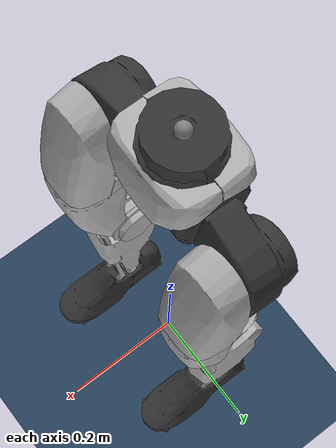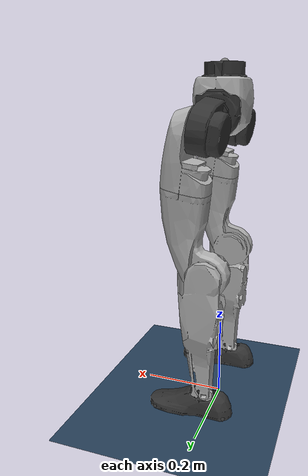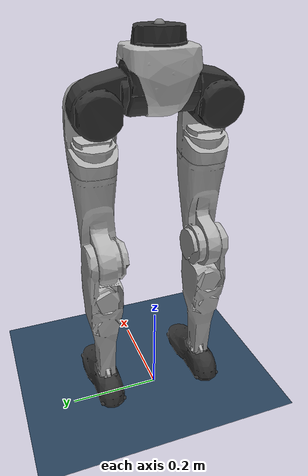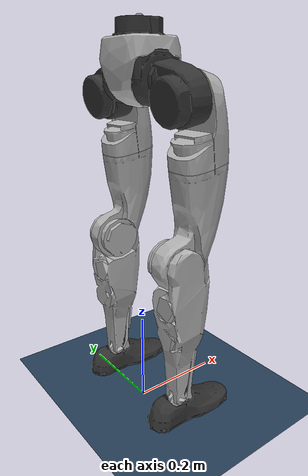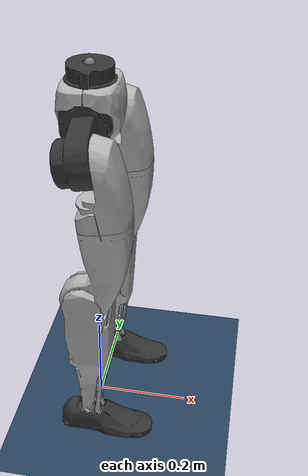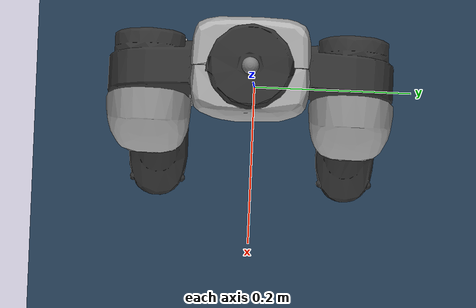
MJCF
<mujoco model="g1_29dof">
  <compiler angle="radian" meshdir="meshes"/>

  <visual>
    <headlight diffuse="0.6 0.6 0.6" ambient="0.3 0.3 0.3" specular="0 0 0"/>
    <rgba haze="0.15 0.25 0.35 1"/>
    <global azimuth="-130" elevation="-20"/>
  </visual>

  <default>
    <default class="torso_motor">
      <joint damping="0.05" armature="0.01" frictionloss="0.2"/>
    </default>
    <default class="leg_motor">
      <joint damping="0.05" armature="0.01" frictionloss="0.2"/>
    </default>
    <default class="ankle_motor">
      <joint damping="0.05" armature="0.01" frictionloss="0.2"/>
    </default>
    <default class="arm_motor">
      <joint damping="0.05" armature="0.01" frictionloss="0.2"/>
    </default>
    <default class="wrist_motor">
      <joint damping="0.05" armature="0.01" frictionloss="0.1"/>
    </default>
  </default>
  <asset>
    <texture type="skybox" builtin="gradient" rgb1="0.3 0.5 0.7" rgb2="0 0 0" width="512" height="3072"/>
    <texture type="2d" name="groundplane" builtin="checker" mark="edge" rgb1="0.2 0.3 0.4" rgb2="0.1 0.2 0.3"
      markrgb="0.8 0.8 0.8" width="300" height="300"/>
    <material name="groundplane" texture="groundplane" texuniform="true" texrepeat="5 5" reflectance="0.2"/>

    <mesh name="pelvis" file="pelvis.STL"/>
    <mesh name="pelvis_contour_link" file="pelvis_contour_link.STL"/>
    <mesh name="left_hip_pitch_link" file="left_hip_pitch_link.STL"/>
    <mesh name="left_hip_roll_link" file="left_hip_roll_link.STL"/>
    <mesh name="left_hip_yaw_link" file="left_hip_yaw_link.STL"/>
    <mesh name="left_knee_link" file="left_knee_link.STL"/>
    <mesh name="left_ankle_pitch_link" file="left_ankle_pitch_link.STL"/>
    <mesh name="left_ankle_roll_link" file="left_ankle_roll_link.STL"/>
    <mesh name="right_hip_pitch_link" file="right_hip_pitch_link.STL"/>
    <mesh name="right_hip_roll_link" file="right_hip_roll_link.STL"/>
    <mesh name="right_hip_yaw_link" file="right_hip_yaw_link.STL"/>
    <mesh name="right_knee_link" file="right_knee_link.STL"/>
    <mesh name="right_ankle_pitch_link" file="right_ankle_pitch_link.STL"/>
    <mesh name="right_ankle_roll_link" file="right_ankle_roll_link.STL"/>
    <mesh name="waist_yaw_link" file="waist_yaw_link.STL"/>
    <mesh name="waist_roll_link" file="waist_roll_link.STL"/>
    <mesh name="torso_link" file="torso_link.STL"/>
    <mesh name="logo_link" file="logo_link.STL"/>
    <mesh name="head_link" file="head_link.STL"/>
    <mesh name="waist_support_link" file="waist_support_link.STL"/>
  </asset>
  <worldbody>
    <!-- Added floor and light -->
    <light pos="0 0 1.5" dir="0 0 -1" directional="true"/>
    <geom name="floor" size="0 0 0.05" type="plane" material="groundplane"/>
    <body name="pelvis" pos="0 0 0.81">
      <site name="imu" size="0.01" pos="0.0 0.0 0.0"/>
      <inertial pos="0 0 -0.07605" quat="1 0 -0.000399148 0" mass="3.813" diaginertia="0.010549 0.0093089 0.0079184"/>
      <geom type="mesh" contype="0" conaffinity="0" group="1" density="0" rgba="0.2 0.2 0.2 1" mesh="pelvis"/>
      <geom type="mesh" contype="0" conaffinity="0" group="1" density="0" rgba="0.7 0.7 0.7 1" mesh="pelvis_contour_link"/>
      <geom type="mesh" rgba="0.7 0.7 0.7 1" mesh="pelvis_contour_link"/>
      <body name="left_hip_pitch_link" pos="0 0.064452 -0.1027">
        <inertial pos="0.002741 0.047791 -0.02606" quat="0.954862 0.293964 0.0302556 0.030122" mass="1.35" diaginertia="0.00181517 0.00153422 0.00116212"/>
        <joint name="left_hip_pitch_joint" pos="0 0 0" axis="0 1 0" range="-2.5307 2.8798" actuatorfrcrange="-88 88" class="leg_motor"/>
        <geom type="mesh" contype="0" conaffinity="0" group="1" density="0" rgba="0.2 0.2 0.2 1" mesh="left_hip_pitch_link"/>
        <geom type="mesh" rgba="0.2 0.2 0.2 1" mesh="left_hip_pitch_link"/>
        <body name="left_hip_roll_link" pos="0 0.052 -0.030465" quat="0.996179 0 -0.0873386 0">
          <inertial pos="0.029812 -0.001045 -0.087934" quat="0.977808 -1.97119e-05 0.205576 -0.0403793" mass="1.52" diaginertia="0.00254986 0.00241169 0.00148755"/>
          <joint name="left_hip_roll_joint" pos="0 0 0" axis="1 0 0" range="-0.5236 2.9671" actuatorfrcrange="-88 88" class="leg_motor"/>
          <geom type="mesh" contype="0" conaffinity="0" group="1" density="0" rgba="0.7 0.7 0.7 1" mesh="left_hip_roll_link"/>
          <geom type="mesh" rgba="0.7 0.7 0.7 1" mesh="left_hip_roll_link"/>
          <body name="left_hip_yaw_link" pos="0.025001 0 -0.12412">
            <inertial pos="-0.057709 -0.010981 -0.15078" quat="0.600598 0.15832 0.223482 0.751181" mass="1.702" diaginertia="0.00776166 0.00717575 0.00160139"/>
            <joint name="left_hip_yaw_joint" pos="0 0 0" axis="0 0 1" range="-2.7576 2.7576" actuatorfrcrange="-88 88" class="leg_motor"/>
            <geom type="mesh" contype="0" conaffinity="0" group="1" density="0" rgba="0.7 0.7 0.7 1" mesh="left_hip_yaw_link"/>
            <geom type="mesh" rgba="0.7 0.7 0.7 1" mesh="left_hip_yaw_link"/>
            <body name="left_knee_link" pos="-0.078273 0.0021489 -0.17734" quat="0.996179 0 0.0873386 0">
              <inertial pos="0.005457 0.003964 -0.12074" quat="0.923418 -0.0327699 0.0158246 0.382067" mass="1.932" diaginertia="0.0113804 0.0112778 0.00146458"/>
              <joint name="left_knee_joint" pos="0 0 0" axis="0 1 0" range="-0.087267 2.8798" actuatorfrcrange="-139 139" class="leg_motor"/>
              <geom type="mesh" contype="0" conaffinity="0" group="1" density="0" rgba="0.7 0.7 0.7 1" mesh="left_knee_link"/>
              <geom type="mesh" rgba="0.7 0.7 0.7 1" mesh="left_knee_link"/>
              <body name="left_ankle_pitch_link" pos="0 -9.4445e-05 -0.30001">
                <inertial pos="-0.007269 0 0.011137" quat="0.603053 0.369225 0.369225 0.603053" mass="0.074" diaginertia="1.89e-05 1.40805e-05 6.9195e-06"/>
                <joint name="left_ankle_pitch_joint" pos="0 0 0" axis="0 1 0" range="-0.87267 0.5236" actuatorfrcrange="-50 50" class="ankle_motor"/>
                <geom type="mesh" contype="0" conaffinity="0" group="1" density="0" rgba="0.7 0.7 0.7 1" mesh="left_ankle_pitch_link"/>
                <geom type="mesh" rgba="0.7 0.7 0.7 1" mesh="left_ankle_pitch_link"/>
                <body name="left_ankle_roll_link" pos="0 0 -0.017558">
                  <inertial pos="0.026505 0 -0.016425" quat="-0.000481092 0.728482 -0.000618967 0.685065" mass="0.608" diaginertia="0.00167218 0.0016161 0.000217621"/>
                  <joint name="left_ankle_roll_joint" pos="0 0 0" axis="1 0 0" range="-0.2618 0.2618" actuatorfrcrange="-50 50" class="ankle_motor"/>
                  <geom type="mesh" contype="0" conaffinity="0" group="1" density="0" rgba="0.2 0.2 0.2 1" mesh="left_ankle_roll_link"/>
                  <geom size="0.005" pos="-0.05 0.025 -0.03" rgba="0.2 0.2 0.2 1"/>
                  <geom size="0.005" pos="-0.05 -0.025 -0.03" rgba="0.2 0.2 0.2 1"/>
                  <geom size="0.005" pos="0.12 0.03 -0.03" rgba="0.2 0.2 0.2 1"/>
                  <geom size="0.005" pos="0.12 -0.03 -0.03" rgba="0.2 0.2 0.2 1"/>
                </body>
              </body>
            </body>
          </body>
        </body>
      </body>
      <body name="right_hip_pitch_link" pos="0 -0.064452 -0.1027">
        <inertial pos="0.002741 -0.047791 -0.02606" quat="0.954862 -0.293964 0.0302556 -0.030122" mass="1.35" diaginertia="0.00181517 0.00153422 0.00116212"/>
        <joint name="right_hip_pitch_joint" pos="0 0 0" axis="0 1 0" range="-2.5307 2.8798" actuatorfrcrange="-88 88" class="leg_motor"/>
        <geom type="mesh" contype="0" conaffinity="0" group="1" density="0" rgba="0.2 0.2 0.2 1" mesh="right_hip_pitch_link"/>
        <geom type="mesh" rgba="0.2 0.2 0.2 1" mesh="right_hip_pitch_link"/>
        <body name="right_hip_roll_link" pos="0 -0.052 -0.030465" quat="0.996179 0 -0.0873386 0">
          <inertial pos="0.029812 0.001045 -0.087934" quat="0.977808 1.97119e-05 0.205576 0.0403793" mass="1.52" diaginertia="0.00254986 0.00241169 0.00148755"/>
          <joint name="right_hip_roll_joint" pos="0 0 0" axis="1 0 0" range="-2.9671 0.5236" actuatorfrcrange="-88 88" class="leg_motor"/>
          <geom type="mesh" contype="0" conaffinity="0" group="1" density="0" rgba="0.7 0.7 0.7 1" mesh="right_hip_roll_link"/>
          <geom type="mesh" rgba="0.7 0.7 0.7 1" mesh="right_hip_roll_link"/>
          <body name="right_hip_yaw_link" pos="0.025001 0 -0.12412">
            <inertial pos="-0.057709 0.010981 -0.15078" quat="0.751181 0.223482 0.15832 0.600598" mass="1.702" diaginertia="0.00776166 0.00717575 0.00160139"/>
            <joint name="right_hip_yaw_joint" pos="0 0 0" axis="0 0 1" range="-2.7576 2.7576" actuatorfrcrange="-88 88" class="leg_motor"/>
            <geom type="mesh" contype="0" conaffinity="0" group="1" density="0" rgba="0.7 0.7 0.7 1" mesh="right_hip_yaw_link"/>
            <geom type="mesh" rgba="0.7 0.7 0.7 1" mesh="right_hip_yaw_link"/>
            <body name="right_knee_link" pos="-0.078273 -0.0021489 -0.17734" quat="0.996179 0 0.0873386 0">
              <inertial pos="0.005457 -0.003964 -0.12074" quat="0.923439 0.0345276 0.0116333 -0.382012" mass="1.932" diaginertia="0.011374 0.0112843 0.00146452"/>
              <joint name="right_knee_joint" pos="0 0 0" axis="0 1 0" range="-0.087267 2.8798" actuatorfrcrange="-139 139" class="leg_motor"/>
              <geom type="mesh" contype="0" conaffinity="0" group="1" density="0" rgba="0.7 0.7 0.7 1" mesh="right_knee_link"/>
              <geom type="mesh" rgba="0.7 0.7 0.7 1" mesh="right_knee_link"/>
              <body name="right_ankle_pitch_link" pos="0 9.4445e-05 -0.30001">
                <inertial pos="-0.007269 0 0.011137" quat="0.603053 0.369225 0.369225 0.603053" mass="0.074" diaginertia="1.89e-05 1.40805e-05 6.9195e-06"/>
                <joint name="right_ankle_pitch_joint" pos="0 0 0" axis="0 1 0" range="-0.87267 0.5236" actuatorfrcrange="-50 50" class="ankle_motor"/>
                <geom type="mesh" contype="0" conaffinity="0" group="1" density="0" rgba="0.7 0.7 0.7 1" mesh="right_ankle_pitch_link"/>
                <geom type="mesh" rgba="0.7 0.7 0.7 1" mesh="right_ankle_pitch_link"/>
                <body name="right_ankle_roll_link" pos="0 0 -0.017558">
                  <inertial pos="0.026505 0 -0.016425" quat="0.000481092 0.728482 0.000618967 0.685065" mass="0.608" diaginertia="0.00167218 0.0016161 0.000217621"/>
                  <joint name="right_ankle_roll_joint" pos="0 0 0" axis="1 0 0" range="-0.2618 0.2618" actuatorfrcrange="-50 50" class="ankle_motor"/>
                  <geom type="mesh" contype="0" conaffinity="0" group="1" density="0" rgba="0.2 0.2 0.2 1" mesh="right_ankle_roll_link"/>
                  <geom size="0.005" pos="-0.05 0.025 -0.03" rgba="0.2 0.2 0.2 1"/>
                  <geom size="0.005" pos="-0.05 -0.025 -0.03" rgba="0.2 0.2 0.2 1"/>
                  <geom size="0.005" pos="0.12 0.03 -0.03" rgba="0.2 0.2 0.2 1"/>
                  <geom size="0.005" pos="0.12 -0.03 -0.03" rgba="0.2 0.2 0.2 1"/>
                </body>
              </body>
            </body>
          </body>
        </body>
      </body>
    </body>
  </worldbody>
  <actuator>
    <motor name="left_hip_pitch" joint="left_hip_pitch_joint" ctrlrange="-88 88"/>
    <motor name="left_hip_roll" joint="left_hip_roll_joint" ctrlrange="-88 88"/>
    <motor name="left_hip_yaw" joint="left_hip_yaw_joint" ctrlrange="-88 88"/>
    <motor name="left_knee" joint="left_knee_joint" ctrlrange="-139 139"/>
    <motor name="left_ankle_pitch" joint="left_ankle_pitch_joint" ctrlrange="-50 50"/>
    <motor name="left_ankle_roll" joint="left_ankle_roll_joint" ctrlrange="-50 50"/>
    <motor name="right_hip_pitch" joint="right_hip_pitch_joint" ctrlrange="-88 88"/>
    <motor name="right_hip_roll" joint="right_hip_roll_joint" ctrlrange="-88 88"/>
    <motor name="right_hip_yaw" joint="right_hip_yaw_joint" ctrlrange="-88 88"/>
    <motor name="right_knee" joint="right_knee_joint" ctrlrange="-139 139"/>
    <motor name="right_ankle_pitch" joint="right_ankle_pitch_joint" ctrlrange="-50 50"/>
    <motor name="right_ankle_roll" joint="right_ankle_roll_joint" ctrlrange="-50 50"/>
  </actuator>
  <sensor>
    <jointpos name="left_hip_pitch_pos" joint="left_hip_pitch_joint"/>
    <jointpos name="left_hip_roll_pos" joint="left_hip_roll_joint"/>
    <jointpos name="left_hip_yaw_pos" joint="left_hip_yaw_joint"/>
    <jointpos name="left_knee_pos" joint="left_knee_joint"/>
    <jointpos name="left_ankle_pitch_pos" joint="left_ankle_pitch_joint"/>
    <jointpos name="left_ankle_roll_pos" joint="left_ankle_roll_joint"/>
    <jointpos name="right_hip_pitch_pos" joint="right_hip_pitch_joint"/>
    <jointpos name="right_hip_roll_pos" joint="right_hip_roll_joint"/>
    <jointpos name="right_hip_yaw_pos" joint="right_hip_yaw_joint"/>
    <jointpos name="right_knee_pos" joint="right_knee_joint"/>
    <jointpos name="right_ankle_pitch_pos" joint="right_ankle_pitch_joint"/>
    <jointpos name="right_ankle_roll_pos" joint="right_ankle_roll_joint"/>
    <jointvel name="left_hip_pitch_vel" joint="left_hip_pitch_joint"/>
    <jointvel name="left_hip_roll_vel" joint="left_hip_roll_joint"/>
    <jointvel name="left_hip_yaw_vel" joint="left_hip_yaw_joint"/>
    <jointvel name="left_knee_vel" joint="left_knee_joint"/>
    <jointvel name="left_ankle_pitch_vel" joint="left_ankle_pitch_joint"/>
    <jointvel name="left_ankle_roll_vel" joint="left_ankle_roll_joint"/>
    <jointvel name="right_hip_pitch_vel" joint="right_hip_pitch_joint"/>
    <jointvel name="right_hip_roll_vel" joint="right_hip_roll_joint"/>
    <jointvel name="right_hip_yaw_vel" joint="right_hip_yaw_joint"/>
    <jointvel name="right_knee_vel" joint="right_knee_joint"/>
    <jointvel name="right_ankle_pitch_vel" joint="right_ankle_pitch_joint"/>
    <jointvel name="right_ankle_roll_vel" joint="right_ankle_roll_joint"/>
    <jointactuatorfrc name="left_hip_pitch_torque" joint="left_hip_pitch_joint"/>
    <jointactuatorfrc name="left_hip_roll_torque" joint="left_hip_roll_joint"/>
    <jointactuatorfrc name="left_hip_yaw_torque" joint="left_hip_yaw_joint"/>
    <jointactuatorfrc name="left_knee_torque" joint="left_knee_joint"/>
    <jointactuatorfrc name="left_ankle_pitch_torque" joint="left_ankle_pitch_joint"/>
    <jointactuatorfrc name="left_ankle_roll_torque" joint="left_ankle_roll_joint"/>
    <jointactuatorfrc name="right_hip_pitch_torque" joint="right_hip_pitch_joint"/>
    <jointactuatorfrc name="right_hip_roll_torque" joint="right_hip_roll_joint"/>
    <jointactuatorfrc name="right_hip_yaw_torque" joint="right_hip_yaw_joint"/>
    <jointactuatorfrc name="right_knee_torque" joint="right_knee_joint"/>
    <jointactuatorfrc name="right_ankle_pitch_torque" joint="right_ankle_pitch_joint"/>
    <jointactuatorfrc name="right_ankle_roll_torque" joint="right_ankle_roll_joint"/>
    <framequat name="imu_quat" objtype="site" objname="imu"/>
    <gyro name="imu_gyro" site="imu"/>
    <accelerometer name="imu_acc" site="imu"/>
    <framepos name="frame_pos" objtype="site" objname="imu"/>
    <framelinvel name="frame_vel" objtype="site" objname="imu"/>
  </sensor>
</mujoco>
